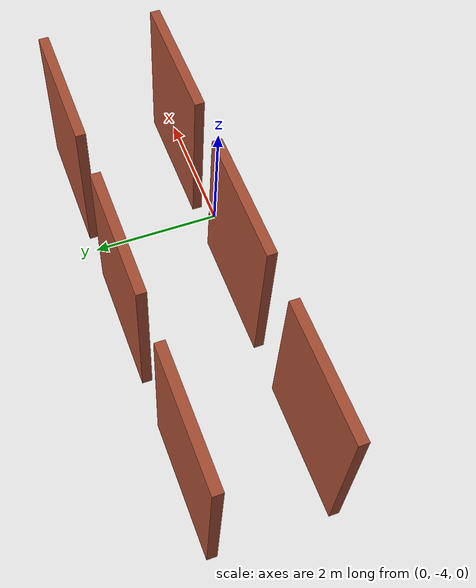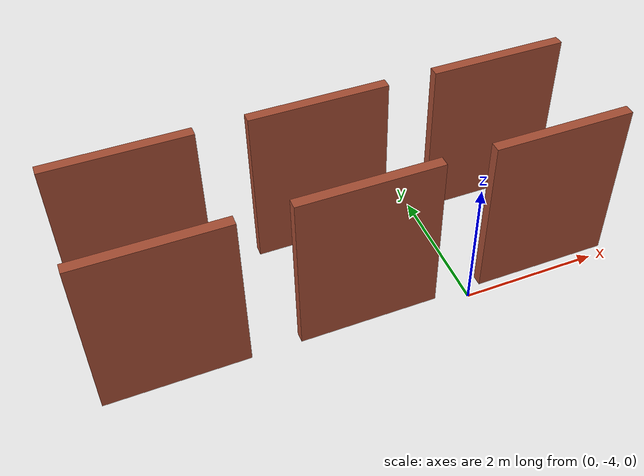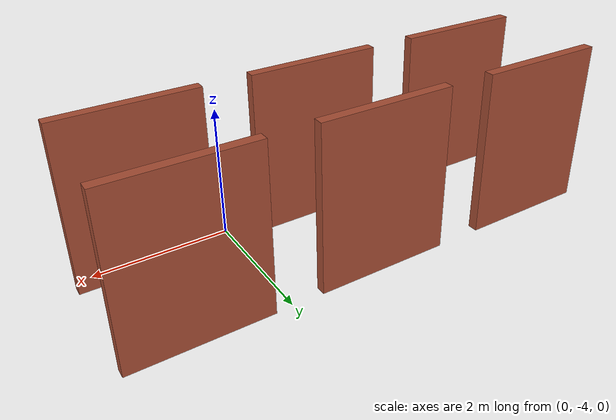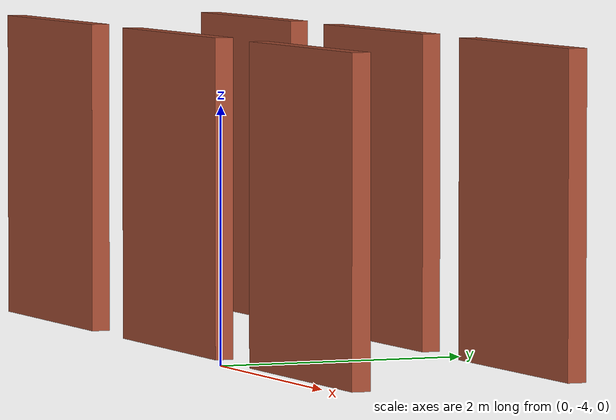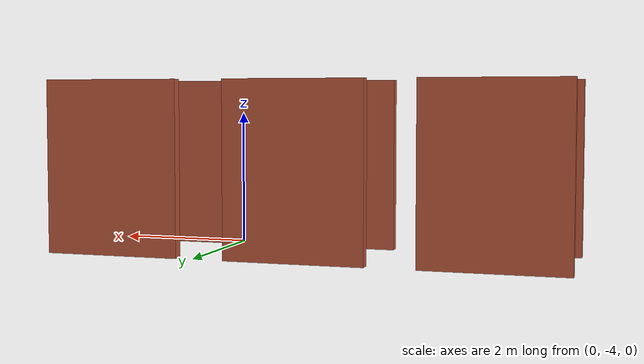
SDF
<?xml version='1.0'?>
<sdf version='1.6'>
  <model name='corridor_symetric1'>
    <pose frame=''>-1.455 -2.915 0 0 -0 0</pose>
    <link name='Wall_0'>
      <collision name='Wall_0_Collision'>
        <geometry>
          <box>
            <size>2 0.15 2.5</size>
          </box>
        </geometry>
        <pose frame=''>0 0 1.25 0 -0 0</pose>
      </collision>
      <visual name='Wall_0_Visual'>
        <pose frame=''>0 0 1.25 0 -0 0</pose>
        <geometry>
          <box>
            <size>2 0.15 2.5</size>
          </box>
        </geometry>
        <material>
          <script>
            <uri>file://media/materials/scripts/gazebo.material</uri>
            <name>Gazebo/Bricks</name>
          </script>
          <ambient>1 1 1 1</ambient>
        </material>
        <meta>
          <layer>0</layer>
        </meta>
      </visual>
      <pose frame=''>-2.7 0.875 0 0 -0 0</pose>
    </link>
    <link name='Wall_10'>
      <collision name='Wall_10_Collision'>
        <geometry>
          <box>
            <size>2 0.15 2.5</size>
          </box>
        </geometry>
        <pose frame=''>0 0 1.25 0 -0 0</pose>
      </collision>
      <visual name='Wall_10_Visual'>
        <pose frame=''>0 0 1.25 0 -0 0</pose>
        <geometry>
          <box>
            <size>2 0.15 2.5</size>
          </box>
        </geometry>
        <material>
          <script>
            <uri>file://media/materials/scripts/gazebo.material</uri>
            <name>Gazebo/Bricks</name>
          </script>
          <ambient>1 1 1 1</ambient>
        </material>
        <meta>
          <layer>0</layer>
        </meta>
      </visual>
      <pose frame=''>0 -0.875 0 0 -0 0</pose>
    </link>
    <link name='Wall_12'>
      <collision name='Wall_12_Collision'>
        <geometry>
          <box>
            <size>2 0.15 2.5</size>
          </box>
        </geometry>
        <pose frame=''>0 0 1.25 0 -0 0</pose>
      </collision>
      <visual name='Wall_12_Visual'>
        <pose frame=''>0 0 1.25 0 -0 0</pose>
        <geometry>
          <box>
            <size>2 0.15 2.5</size>
          </box>
        </geometry>
        <material>
          <script>
            <uri>file://media/materials/scripts/gazebo.material</uri>
            <name>Gazebo/Bricks</name>
          </script>
          <ambient>1 1 1 1</ambient>
        </material>
        <meta>
          <layer>0</layer>
        </meta>
      </visual>
      <pose frame=''>2.7 -0.875 0 0 -0 0</pose>
    </link>
    <link name='Wall_2'>
      <collision name='Wall_2_Collision'>
        <geometry>
          <box>
            <size>2 0.15 2.5</size>
          </box>
        </geometry>
        <pose frame=''>0 0 1.25 0 -0 0</pose>
      </collision>
      <visual name='Wall_2_Visual'>
        <pose frame=''>0 0 1.25 0 -0 0</pose>
        <geometry>
          <box>
            <size>2 0.15 2.5</size>
          </box>
        </geometry>
        <material>
          <script>
            <uri>file://media/materials/scripts/gazebo.material</uri>
            <name>Gazebo/Bricks</name>
          </script>
          <ambient>1 1 1 1</ambient>
        </material>
        <meta>
          <layer>0</layer>
        </meta>
      </visual>
      <pose frame=''>0 0.875 0 0 -0 0</pose>
    </link>
    <link name='Wall_4'>
      <collision name='Wall_4_Collision'>
        <geometry>
          <box>
            <size>2 0.15 2.5</size>
          </box>
        </geometry>
        <pose frame=''>0 0 1.25 0 -0 0</pose>
      </collision>
      <visual name='Wall_4_Visual'>
        <pose frame=''>0 0 1.25 0 -0 0</pose>
        <geometry>
          <box>
            <size>2 0.15 2.5</size>
          </box>
        </geometry>
        <material>
          <script>
            <uri>file://media/materials/scripts/gazebo.material</uri>
            <name>Gazebo/Bricks</name>
          </script>
          <ambient>1 1 1 1</ambient>
        </material>
        <meta>
          <layer>0</layer>
        </meta>
      </visual>
      <pose frame=''>2.7 0.875 0 0 -0 0</pose>
    </link>
    <link name='Wall_6'>
      <collision name='Wall_6_Collision'>
        <geometry>
          <box>
            <size>2 0.15 2.5</size>
          </box>
        </geometry>
        <pose frame=''>0 0 1.25 0 -0 0</pose>
      </collision>
      <visual name='Wall_6_Visual'>
        <pose frame=''>0 0 1.25 0 -0 0</pose>
        <geometry>
          <box>
            <size>2 0.15 2.5</size>
          </box>
        </geometry>
        <material>
          <script>
            <uri>file://media/materials/scripts/gazebo.material</uri>
            <name>Gazebo/Bricks</name>
          </script>
          <ambient>1 1 1 1</ambient>
        </material>
        <meta>
          <layer>0</layer>
        </meta>
      </visual>
      <pose frame=''>-2.7 -0.875 0 0 -0 0</pose>
    </link>
    <static>1</static>
  </model>
</sdf>
